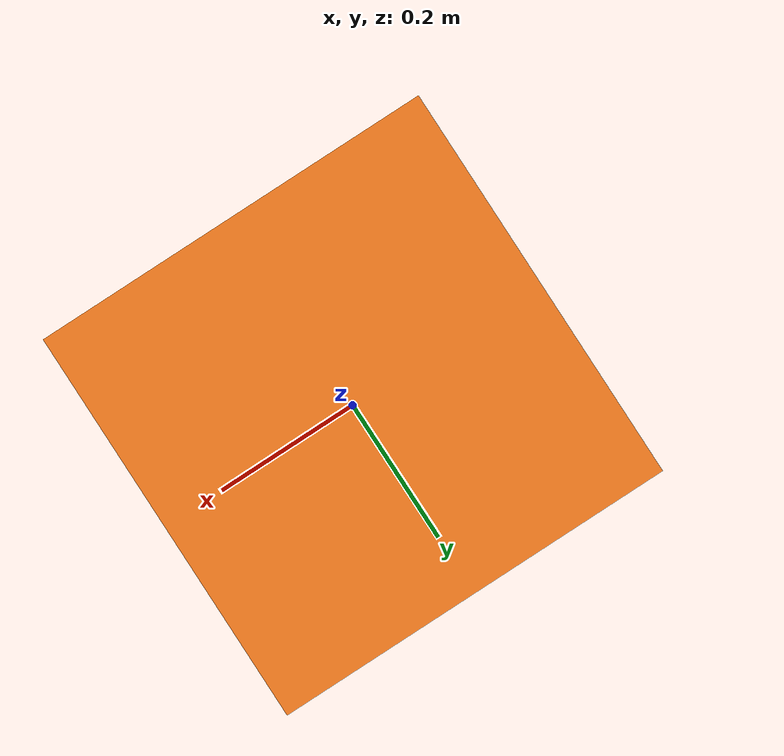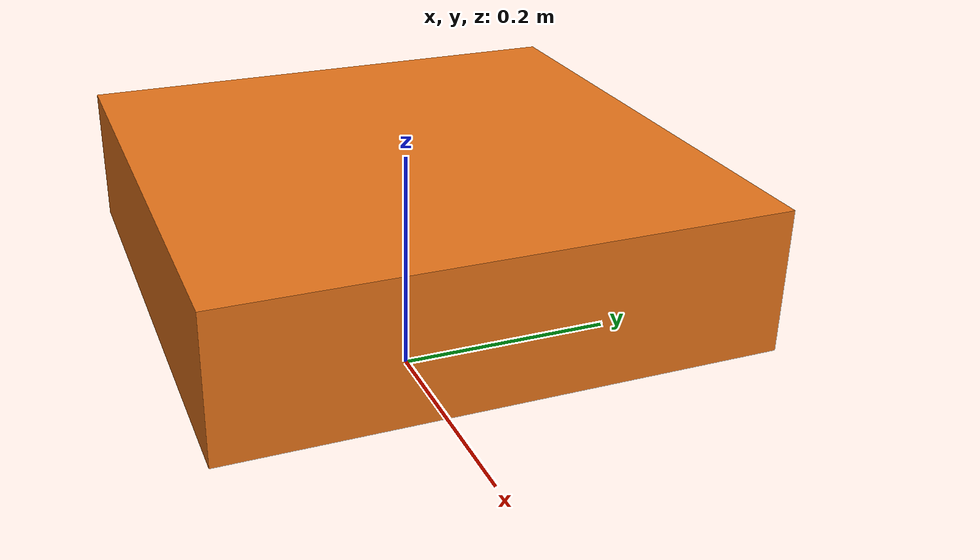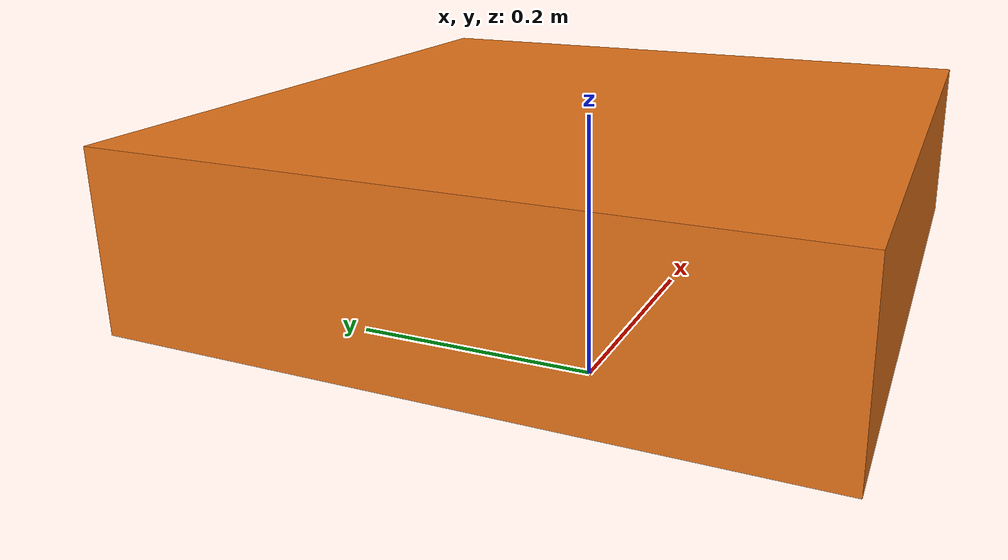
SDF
<?xml version="1.0"?>
<sdf version="1.6">
  <model name="uwb_dummy">
    <static>false</static>
    <pose>0 0 0 0 0 0</pose>
    <link name="base_link">
      <pose>0 0 0.15 0 0 0</pose>
      <inertial>
        <mass>1.0</mass>
        <inertia>
          <ixx>0.02</ixx>
          <ixy>0.0</ixy>
          <ixz>0.0</ixz>
          <iyy>0.02</iyy>
          <iyz>0.0</iyz>
          <izz>0.02</izz>
        </inertia>
      </inertial>
      <collision name="collision">
        <geometry>
          <box>
            <size>0.45 0.45 0.12</size>
          </box>
        </geometry>
      </collision>
      <visual name="visual">
        <geometry>
          <box>
            <size>0.45 0.45 0.12</size>
          </box>
        </geometry>
        <material>
          <ambient>0.9 0.45 0.1 1</ambient>
          <diffuse>0.9 0.45 0.1 1</diffuse>
        </material>
      </visual>
    </link>
  </model>
</sdf>
